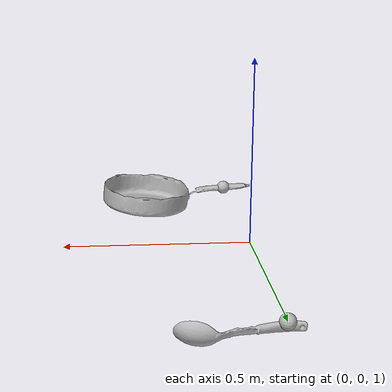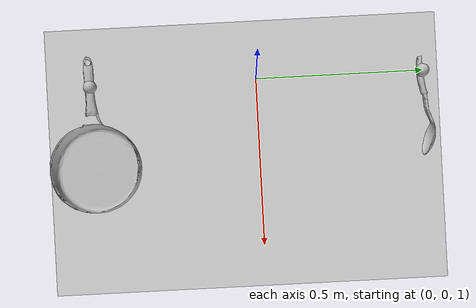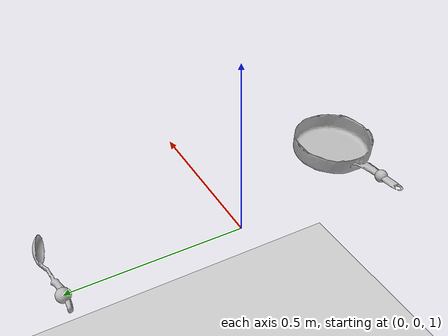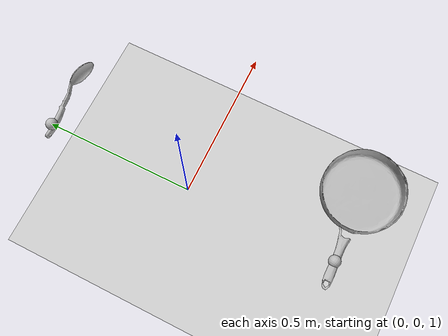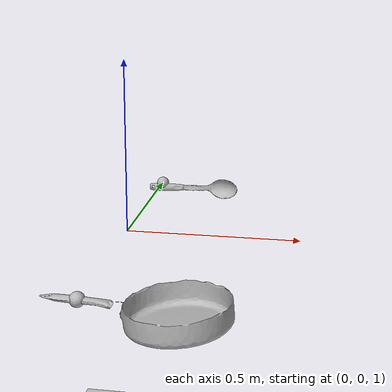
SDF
<sdf version="1.6">
 <world name="b_frying_pan_b_serving_spoon_v">
  <include><uri>model://sun</uri></include>
  <include><uri>model://ground_plane</uri></include>
  <include>
   <uri>model://b_serving_spoon</uri>
   <pose>0.112572 0.508131 0.984633 1.382835 0.015399 0.080779</pose>
  </include>
  <plugin name="grains_factory" filename="libGrainsFactoryPlugin.so">
   <pose>0.228443 -0.496122 0.971397 0 0 0</pose>
   <mass>0.001</mass>
   <radius>0.015</radius>
   <quantity>100</quantity>
   <friction>0.4</friction>
   <friction2>0.4</friction2>
   <velocity_decay>0.3</velocity_decay>
  </plugin>
  <include><uri>model://b_frying_pan</uri><pose>0.228443 -0.496122 0.971397 0 0 0</pose></include>
  <include>
   <uri>model://gripper</uri>
   <name>left_ee</name>
   <pose>0 0.5 1 0 0 0</pose>
   <plugin name="l_force_controller" filename="libvelocity_controller_plugin.so">
    <linkName>link</linkName>
    <topicName>set_l_ee_twist</topicName>
    <gains>
     <linear><P>100.0</P><I>0.0</I><D>25.0</D></linear>
     <angular><P>100.0</P><I>0.0</I><D>25.0</D></angular>
    </gains>
   </plugin>
   <plugin name="l_grip" filename="libGripPlugin.so">
    <parentLinkName>link</parentLinkName>
    <childLinkName>b_serving_spoon::link</childLinkName>
    <relativePose>0.112571612 0.00813051871955 -0.0153673645109 1.3828344221275815 0.015398730956486372 0.08077832485708741</relativePose>
   </plugin>
   <plugin name="l_tf_broadcaster" filename="libtf_broadcaster_plugin.so">
    <linkName>link</linkName>
    <frameName>l_gripper_tool_frame</frameName>
   </plugin>
  </include>
  <include>
   <uri>model://gripper</uri>
   <name>right_ee</name>
   <pose>0 -0.5 1 1.547368 1.402341 1.343703</pose>
   <plugin name="r_force_controller" filename="libvelocity_controller_plugin.so">
    <linkName>link</linkName>
    <topicName>set_r_ee_twist</topicName>
    <gains>
     <linear><P>100.0</P><I>0.0</I><D>25.0</D></linear>
     <angular><P>100.0</P><I>0.0</I><D>25.0</D></angular>
    </gains>
   </plugin>
   <plugin name="r_grip" filename="libGripPlugin.so">
    <parentLinkName>link</parentLinkName>
    <childLinkName>b_frying_pan::link</childLinkName>
    <relativePose>0.0186144 0.0468562 0.224672 -1.55141 -1.36676 1.3834</relativePose>
   </plugin>
   <plugin name="r_tf_broadcaster" filename="libtf_broadcaster_plugin.so">
    <linkName>link</linkName>
    <frameName>r_gripper_tool_frame</frameName>
   </plugin>
  </include>
  <plugin name="feature_visualization_plugin" filename="libgiskard_visualization_plugin.so"/>
 </world>
</sdf>

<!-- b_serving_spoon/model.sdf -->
<sdf version='1.6'>
	<model name='b_serving_spoon'>
		<static>false</static>
		<pose>0 0 0 0 0 0</pose>

		<link name='link'>
			<inertial>
			<mass>0.15</mass>
			<pose>0.0019638 -6.1791e-05 0.00018857 0 0 0</pose>
				<inertia>
					<ixx>0.0000075</ixx>
					<iyy>0.00112875</iyy>
					<izz>0.00112875</izz>
				</inertia>
			</inertial>
			<sensor name="tool_contact_sensor" type="contact">
				<always_on>true</always_on>
				<update_rate>30.0</update_rate>
				<contact>
					<collision>collision</collision>
				</contact>
				<plugin name="tool_bumper" filename="libgazebo_ros_bumper.so">
					<bumperTopicName>tool_contact_sensor_state</bumperTopicName>
					<frameName>world</frameName>
				</plugin>
			</sensor>
			<collision name='collision'>
				<geometry>
					<mesh>
						<uri>model://b_serving_spoon/b_serving_spoon.dae</uri>
					</mesh>
				</geometry>
				<surface>
					<friction>
						<ode>
							<mu>0.2</mu>
							<mu2>0.2</mu2>
						</ode>
					</friction>
				</surface>
			</collision>
			<visual name='visual'>
				<geometry>
					<mesh>
						<uri>model://b_serving_spoon/b_serving_spoon.dae</uri>
					</mesh>
				</geometry>
			</visual>
		</link>
	</model>
</sdf>

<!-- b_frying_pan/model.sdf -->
<sdf version='1.6'>
    <model name='b_frying_pan'>
        <static>false</static>
        <pose>0 0 0 0 0 0</pose>

        <link name='link'>
            <inertial>
                <mass>1</mass>
                <pose>0.002625 0.0 0.01465 0 0 0</pose>
                <inertia>
                    <ixx>0.007971675</ixx>
                    <iyy>0.008713309</iyy>
                    <izz>0.016311566</izz>
                    <ixy>-1.69694542e-019</ixy>
                    <ixz>-0.000025788</ixz>
                    <iyz>-6.28650663e-021</iyz>
                </inertia>
            </inertial>t

            <collision name='collision'>
                <geometry>
                    <mesh>
                        <uri>model://b_frying_pan/b_frying_pan.dae</uri>
                    </mesh>
                </geometry>
                <surface>
                    <friction>
                        <ode>
                            <mu>0.2</mu>
                            <mu2>0.2</mu2>
                        </ode>
                    </friction>
                </surface>
            </collision>
            <visual name='visual'>
                <geometry>
                    <mesh>
                        <uri>model://b_frying_pan/b_frying_pan.dae</uri>
                    </mesh>
                </geometry>
            </visual>
        </link>
    </model>
</sdf>

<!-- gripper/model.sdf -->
<sdf version='1.6'>
    <model name='gripper'>
        <static>false</static>
        <allow_auto_disable>false</allow_auto_disable>

        <pose>0 0 0 0 0 0</pose>

        <link name='link'>
            <pose>0 0 0 0 0 0</pose>

            <gravity>false</gravity>

            <visual name='visual'>
                <geometry>
                    <sphere>
                        <radius>0.02</radius>
                    </sphere>
                </geometry>
            </visual>

        </link>
    </model>
</sdf>
